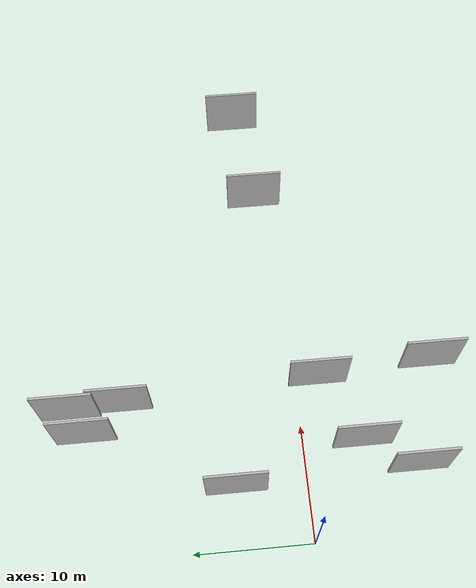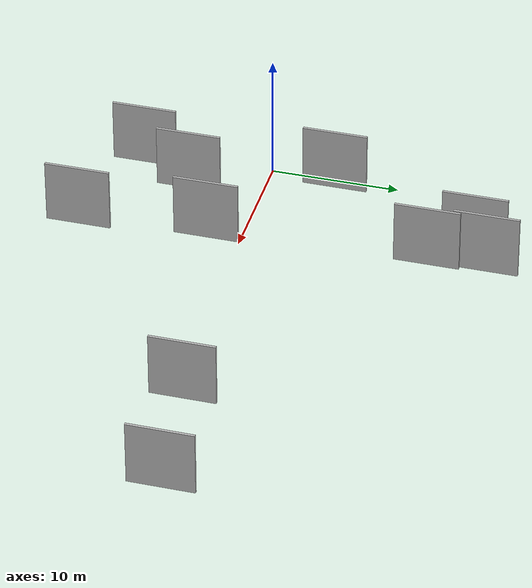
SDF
<sdf version="1.6">
 <world name="default">
  <scene>
   <sky><clouds><speed>12</speed></clouds></sky>
   <ambient>0.4 0.4 0.4 1</ambient>
   <background>0.7 0.7 0.7 1</background>
   <shadows>1</shadows>
  </scene>
  <gravity>0 0 -9.8066</gravity>
  <magnetic_field>6e-06 2.3e-05 -4.2e-05</magnetic_field>
  <physics default="0" name="default_physics" type="ode">
   <ode>
    <solver>
     <type>quick</type>
     <iters>10</iters>
     <sor>1.0</sor>
     <use_dynamic_moi_rescaling>0</use_dynamic_moi_rescaling>
    </solver>
    <constraints>
     <cfm>0</cfm>
     <erp>0.2</erp>
     <contact_max_correcting_vel>100</contact_max_correcting_vel>
     <contact_surface_layer>0.001</contact_surface_layer>
    </constraints>
   </ode>
   <max_step_size>0.004</max_step_size>
   <real_time_factor>1</real_time_factor>
   <real_time_update_rate>250</real_time_update_rate>
  </physics>
  <light name="sun" type="directional">
   <pose>0 0 10 0 0 0</pose>
   <diffuse>0.8 0.8 0.8 1</diffuse>
   <specular>0.2 0.2 0.2 1</specular>
   <attenuation>
    <range>1000</range>
    <constant>0.9</constant>
    <linear>0.01</linear>
    <quadratic>0.001</quadratic>
   </attenuation>
   <direction>-0.5 0.1 -0.9</direction>
  </light>
  <model name="grey_wall_1">
   <static>1</static>
   <pose>9.5395 18.1032 2.5 0.000000 0.000000 1.570796</pose>
   <link name="link">
    <pose>0 0 2.50 0 0 0</pose>
    <collision name="collision"><geometry><box><size>5.00 0.2 5.00</size></box></geometry></collision>
    <visual name="visual">
     <cast_shadows>0</cast_shadows>
     <geometry><box><size>5.00 0.2 5.00</size></box></geometry>
     <material>
      <script>
       <uri>model://HANNAS_wall/materials/scripts</uri>
       <uri>model://HANNAS_wall/materials/textures</uri>
       <name>vrc/HANNAS_wall</name>
      </script>
     </material>
    </visual>
   </link>
  </model>
  <model name="grey_wall_2">
   <static>1</static>
   <pose>12.0276 15.0549 2.5 0.000000 0.000000 1.570796</pose>
   <link name="link">
    <pose>0 0 2.50 0 0 0</pose>
    <collision name="collision"><geometry><box><size>5.00 0.2 5.00</size></box></geometry></collision>
    <visual name="visual">
     <cast_shadows>0</cast_shadows>
     <geometry><box><size>5.00 0.2 5.00</size></box></geometry>
     <material>
      <script>
       <uri>model://HANNAS_wall/materials/scripts</uri>
       <uri>model://HANNAS_wall/materials/textures</uri>
       <name>vrc/HANNAS_wall</name>
      </script>
     </material>
    </visual>
   </link>
  </model>
  <model name="grey_wall_3">
   <static>1</static>
   <pose>12.9944 -1.6528 2.5 0.000000 0.000000 1.570796</pose>
   <link name="link">
    <pose>0 0 2.50 0 0 0</pose>
    <collision name="collision"><geometry><box><size>5.00 0.2 5.00</size></box></geometry></collision>
    <visual name="visual">
     <cast_shadows>0</cast_shadows>
     <geometry><box><size>5.00 0.2 5.00</size></box></geometry>
     <material>
      <script>
       <uri>model://HANNAS_wall/materials/scripts</uri>
       <uri>model://HANNAS_wall/materials/textures</uri>
       <name>vrc/HANNAS_wall</name>
      </script>
     </material>
    </visual>
   </link>
  </model>
  <model name="grey_wall_4">
   <static>1</static>
   <pose>41.9031 3.4586 2.5 0.000000 0.000000 1.570796</pose>
   <link name="link">
    <pose>0 0 2.50 0 0 0</pose>
    <collision name="collision"><geometry><box><size>5.00 0.2 5.00</size></box></geometry></collision>
    <visual name="visual">
     <cast_shadows>0</cast_shadows>
     <geometry><box><size>5.00 0.2 5.00</size></box></geometry>
     <material>
      <script>
       <uri>model://HANNAS_wall/materials/scripts</uri>
       <uri>model://HANNAS_wall/materials/textures</uri>
       <name>vrc/HANNAS_wall</name>
      </script>
     </material>
    </visual>
   </link>
  </model>
  <model name="grey_wall_5">
   <static>1</static>
   <pose>4.7121 -8.9044 2.5 0.000000 0.000000 1.570796</pose>
   <link name="link">
    <pose>0 0 2.50 0 0 0</pose>
    <collision name="collision"><geometry><box><size>5.00 0.2 5.00</size></box></geometry></collision>
    <visual name="visual">
     <cast_shadows>0</cast_shadows>
     <geometry><box><size>5.00 0.2 5.00</size></box></geometry>
     <material>
      <script>
       <uri>model://HANNAS_wall/materials/scripts</uri>
       <uri>model://HANNAS_wall/materials/textures</uri>
       <name>vrc/HANNAS_wall</name>
      </script>
     </material>
    </visual>
   </link>
  </model>
  <model name="grey_wall_6">
   <static>1</static>
   <pose>13.8090 -11.4056 2.5 0.000000 0.000000 1.570796</pose>
   <link name="link">
    <pose>0 0 2.50 0 0 0</pose>
    <collision name="collision"><geometry><box><size>5.00 0.2 5.00</size></box></geometry></collision>
    <visual name="visual">
     <cast_shadows>0</cast_shadows>
     <geometry><box><size>5.00 0.2 5.00</size></box></geometry>
     <material>
      <script>
       <uri>model://HANNAS_wall/materials/scripts</uri>
       <uri>model://HANNAS_wall/materials/textures</uri>
       <name>vrc/HANNAS_wall</name>
      </script>
     </material>
    </visual>
   </link>
  </model>
  <model name="grey_wall_7">
   <static>1</static>
   <pose>32.0737 2.1326 2.5 0.000000 0.000000 1.570796</pose>
   <link name="link">
    <pose>0 0 2.50 0 0 0</pose>
    <collision name="collision"><geometry><box><size>5.00 0.2 5.00</size></box></geometry></collision>
    <visual name="visual">
     <cast_shadows>0</cast_shadows>
     <geometry><box><size>5.00 0.2 5.00</size></box></geometry>
     <material>
      <script>
       <uri>model://HANNAS_wall/materials/scripts</uri>
       <uri>model://HANNAS_wall/materials/textures</uri>
       <name>vrc/HANNAS_wall</name>
      </script>
     </material>
    </visual>
   </link>
  </model>
  <model name="grey_wall_8">
   <static>1</static>
   <pose>11.7199 19.4444 2.5 0.000000 0.000000 1.570796</pose>
   <link name="link">
    <pose>0 0 2.50 0 0 0</pose>
    <collision name="collision"><geometry><box><size>5.00 0.2 5.00</size></box></geometry></collision>
    <visual name="visual">
     <cast_shadows>0</cast_shadows>
     <geometry><box><size>5.00 0.2 5.00</size></box></geometry>
     <material>
      <script>
       <uri>model://HANNAS_wall/materials/scripts</uri>
       <uri>model://HANNAS_wall/materials/textures</uri>
       <name>vrc/HANNAS_wall</name>
      </script>
     </material>
    </visual>
   </link>
  </model>
  <model name="grey_wall_9">
   <static>1</static>
   <pose>4.2234 6.0233 2.5 0.000000 0.000000 1.570796</pose>
   <link name="link">
    <pose>0 0 2.50 0 0 0</pose>
    <collision name="collision"><geometry><box><size>5.00 0.2 5.00</size></box></geometry></collision>
    <visual name="visual">
     <cast_shadows>0</cast_shadows>
     <geometry><box><size>5.00 0.2 5.00</size></box></geometry>
     <material>
      <script>
       <uri>model://HANNAS_wall/materials/scripts</uri>
       <uri>model://HANNAS_wall/materials/textures</uri>
       <name>vrc/HANNAS_wall</name>
      </script>
     </material>
    </visual>
   </link>
  </model>
  <model name="grey_wall_10">
   <static>1</static>
   <pose>7.1808 -4.6897 2.5 0.000000 0.000000 1.570796</pose>
   <link name="link">
    <pose>0 0 2.50 0 0 0</pose>
    <collision name="collision"><geometry><box><size>5.00 0.2 5.00</size></box></geometry></collision>
    <visual name="visual">
     <cast_shadows>0</cast_shadows>
     <geometry><box><size>5.00 0.2 5.00</size></box></geometry>
     <material>
      <script>
       <uri>model://HANNAS_wall/materials/scripts</uri>
       <uri>model://HANNAS_wall/materials/textures</uri>
       <name>vrc/HANNAS_wall</name>
      </script>
     </material>
    </visual>
   </link>
  </model>
 </world>
</sdf>
